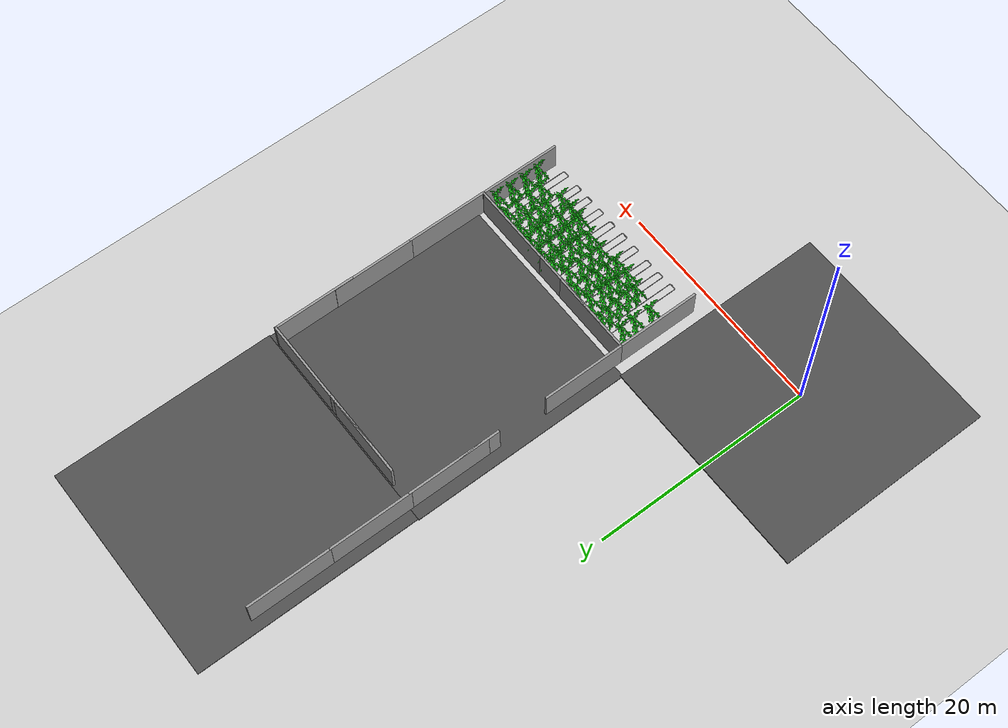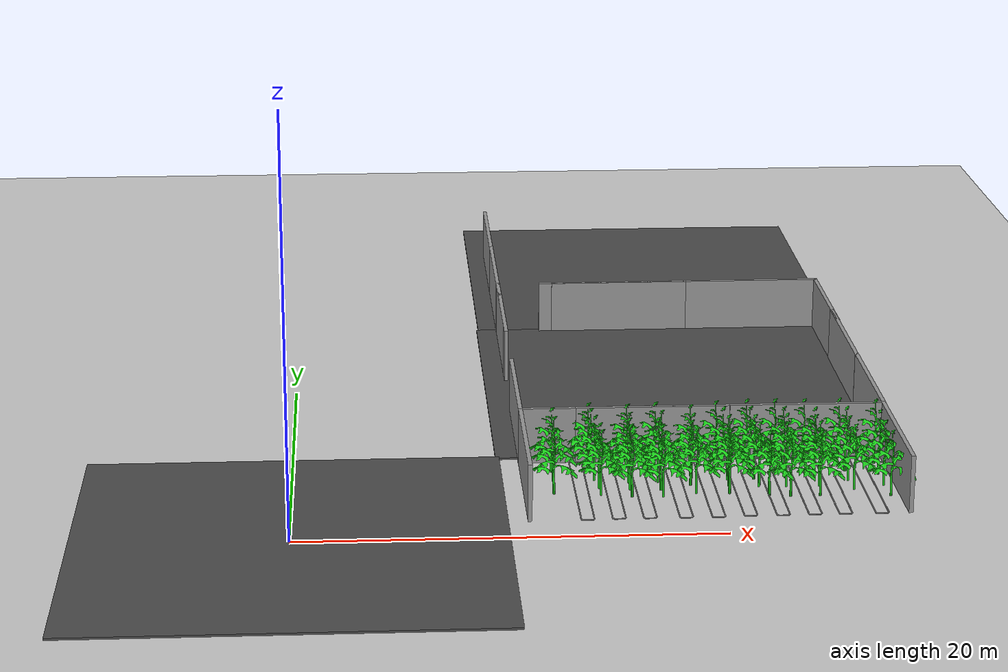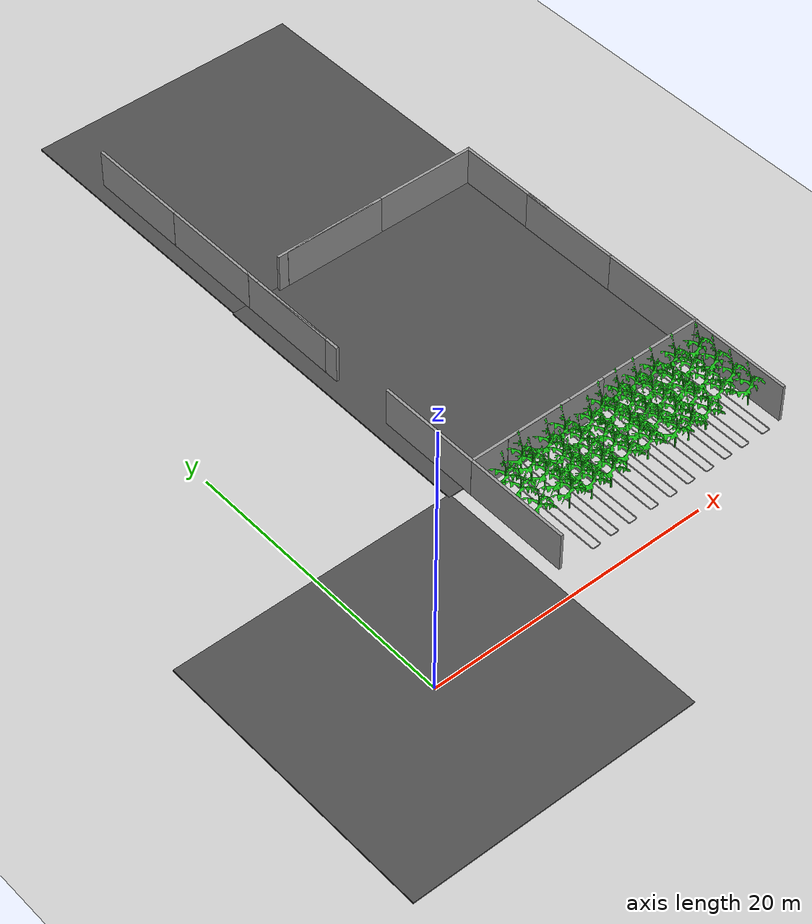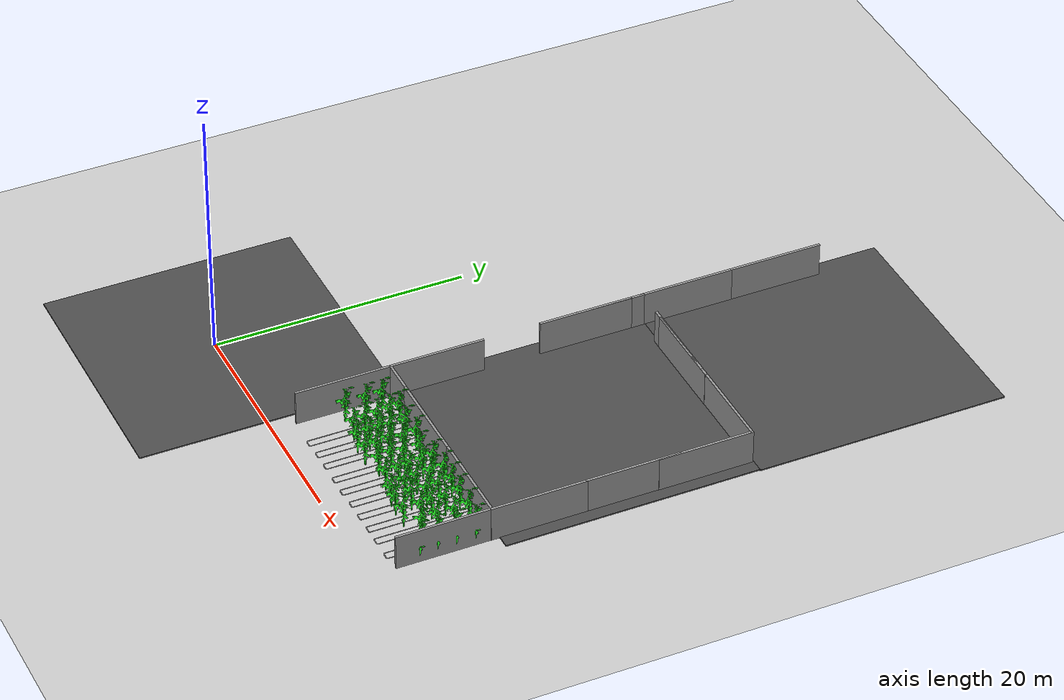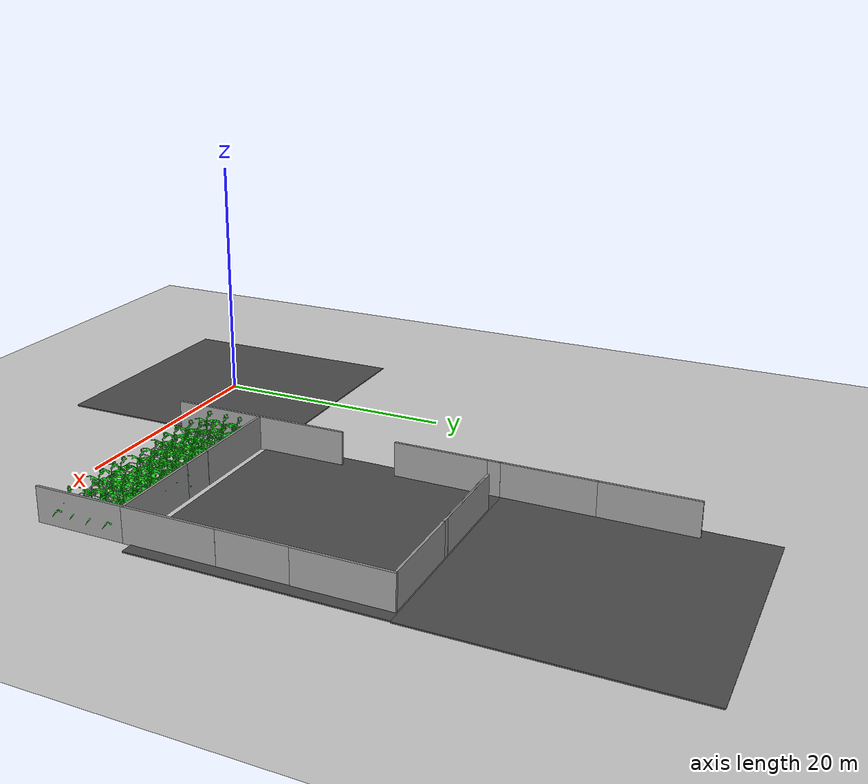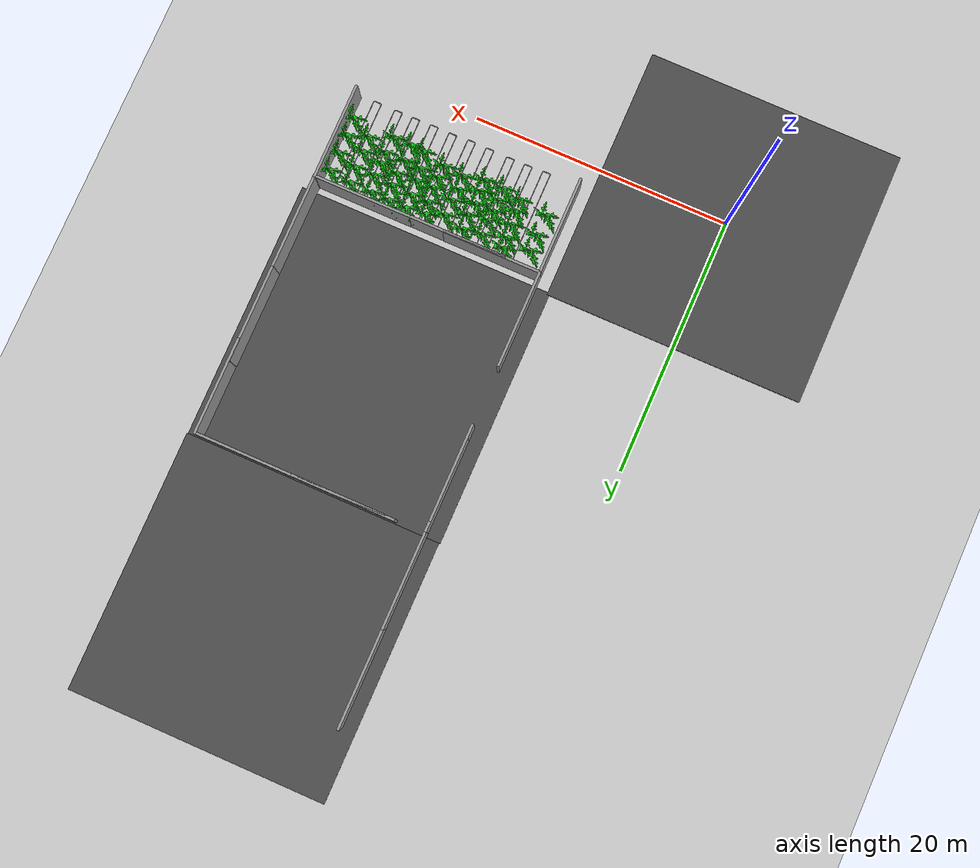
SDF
<sdf version="1.7">
 <world name="default">
  <model name="ground_plane">
   <static>1</static>
   <link name="link">
    <collision name="collision">
     <geometry><plane><normal>0 0 1</normal><size>100 100</size></plane></geometry>
     <surface><friction><ode><mu>100</mu><mu2>50</mu2></ode></friction></surface>
    </collision>
    <visual name="visual">
     <cast_shadows>0</cast_shadows>
     <geometry><plane><normal>0 0 1</normal><size>100 100</size></plane></geometry>
     <material>
      <script><uri>file://media/materials/scripts/gazebo.material</uri><name>Gazebo/Grey</name></script>
     </material>
    </visual>
   </link>
  </model>
  <model name="grey_wall_clone_clone">
   <static>1</static>
   <link name="link">
    <pose>0 0 1.4 0 -0 0</pose>
    <collision name="collision"><geometry><box><size>7.5 0.2 2.8</size></box></geometry></collision>
    <visual name="visual">
     <cast_shadows>0</cast_shadows>
     <geometry><box><size>7.5 0.2 2.8</size></box></geometry>
     <material>
      <script>
       <uri>model://grey_wall/materials/scripts</uri>
       <uri>model://grey_wall/materials/textures</uri>
       <name>vrc/grey_wall</name>
      </script>
     </material>
    </visual>
   </link>
   <pose>11 5.62968 0 0 -0 1.57</pose>
  </model>
  <model name="asphalt_plane">
   <static>1</static>
   <link name="link">
    <collision name="collision"><geometry><box><size>20 20 0.1</size></box></geometry></collision>
    <visual name="visual">
     <cast_shadows>0</cast_shadows>
     <geometry><box><size>20 20 0.1</size></box></geometry>
     <material>
      <script>
       <uri>model://asphalt_plane/materials/scripts</uri>
       <uri>model://asphalt_plane/materials/textures</uri>
       <name>vrc/asphalt</name>
      </script>
     </material>
    </visual>
   </link>
   <pose>0.007662 0.157905 0 0 -0 0</pose>
  </model>
  <model name="asphalt_plane_clone_clone_0">
   <static>1</static>
   <link name="link">
    <collision name="collision"><geometry><box><size>20 20 0.1</size></box></geometry></collision>
    <visual name="visual">
     <cast_shadows>0</cast_shadows>
     <geometry><box><size>20 20 0.1</size></box></geometry>
     <material>
      <script>
       <uri>model://asphalt_plane/materials/scripts</uri>
       <uri>model://asphalt_plane/materials/textures</uri>
       <name>vrc/asphalt</name>
      </script>
     </material>
    </visual>
   </link>
   <pose>19.8233 19.9822 0 0 -0 0</pose>
  </model>
  <model name="grey_wall_clone_0_clone_1">
   <static>1</static>
   <link name="link">
    <pose>0 0 1.4 0 -0 0</pose>
    <collision name="collision"><geometry><box><size>7.5 0.2 2.8</size></box></geometry></collision>
    <visual name="visual">
     <cast_shadows>0</cast_shadows>
     <geometry><box><size>7.5 0.2 2.8</size></box></geometry>
     <material>
      <script>
       <uri>model://grey_wall/materials/scripts</uri>
       <uri>model://grey_wall/materials/textures</uri>
       <name>vrc/grey_wall</name>
      </script>
     </material>
    </visual>
   </link>
   <pose>17.4307 9.39716 0 0 -0 0</pose>
  </model>
  <model name="grey_wall_clone_0_clone_2">
   <static>1</static>
   <link name="link">
    <pose>0 0 1.4 0 -0 0</pose>
    <collision name="collision"><geometry><box><size>7.5 0.2 2.8</size></box></geometry></collision>
    <visual name="visual">
     <cast_shadows>0</cast_shadows>
     <geometry><box><size>7.5 0.2 2.8</size></box></geometry>
     <material>
      <script>
       <uri>model://grey_wall/materials/scripts</uri>
       <uri>model://grey_wall/materials/textures</uri>
       <name>vrc/grey_wall</name>
      </script>
     </material>
    </visual>
   </link>
   <pose>24.9393 9.40639 0 0 -0 0</pose>
  </model>
  <model name="grey_wall_clone_clone_1_clone_2">
   <static>1</static>
   <link name="link">
    <pose>0 0 1.4 0 -0 0</pose>
    <collision name="collision"><geometry><box><size>7.5 0.2 2.8</size></box></geometry></collision>
    <visual name="visual">
     <cast_shadows>0</cast_shadows>
     <geometry><box><size>7.5 0.2 2.8</size></box></geometry>
     <material>
      <script>
       <uri>model://grey_wall/materials/scripts</uri>
       <uri>model://grey_wall/materials/textures</uri>
       <name>vrc/grey_wall</name>
      </script>
     </material>
    </visual>
   </link>
   <pose>28.7077 5.77425 0 0 -0 1.57</pose>
  </model>
  <model name="piperail_clone_7_clone_8">
   <static>1</static>
   <link name="link">
    <collision name="collision">
     <geometry>
      <mesh><scale>0.001 0.001 0.001</scale><uri>model://piperail/meshes/piperail.STL</uri></mesh>
     </geometry>
    </collision>
    <visual name="visual">
     <geometry>
      <mesh><scale>0.001 0.001 0.001</scale><uri>model://piperail/meshes/piperail.STL</uri></mesh>
     </geometry>
    </visual>
   </link>
   <pose>14.7814 9.25276 0.05 1.57 -0 0</pose>
  </model>
  <model name="piperail_clone_7_clone_clone_0">
   <static>1</static>
   <link name="link">
    <collision name="collision">
     <geometry>
      <mesh><scale>0.001 0.001 0.001</scale><uri>model://piperail/meshes/piperail.STL</uri></mesh>
     </geometry>
    </collision>
    <visual name="visual">
     <geometry>
      <mesh><scale>0.001 0.001 0.001</scale><uri>model://piperail/meshes/piperail.STL</uri></mesh>
     </geometry>
    </visual>
   </link>
   <pose>16.217 9.25654 0.050452 1.57 -0 0</pose>
  </model>
  <model name="piperail_clone_7_clone_clone_1">
   <static>1</static>
   <link name="link">
    <collision name="collision">
     <geometry>
      <mesh><scale>0.001 0.001 0.001</scale><uri>model://piperail/meshes/piperail.STL</uri></mesh>
     </geometry>
    </collision>
    <visual name="visual">
     <geometry>
      <mesh><scale>0.001 0.001 0.001</scale><uri>model://piperail/meshes/piperail.STL</uri></mesh>
     </geometry>
    </visual>
   </link>
   <pose>17.8892 9.23572 0.050452 1.57 -0 0</pose>
  </model>
  <model name="piperail_clone_7_clone_clone_2">
   <static>1</static>
   <link name="link">
    <collision name="collision">
     <geometry>
      <mesh><scale>0.001 0.001 0.001</scale><uri>model://piperail/meshes/piperail.STL</uri></mesh>
     </geometry>
    </collision>
    <visual name="visual">
     <geometry>
      <mesh><scale>0.001 0.001 0.001</scale><uri>model://piperail/meshes/piperail.STL</uri></mesh>
     </geometry>
    </visual>
   </link>
   <pose>19.3855 9.21694 0.050452 1.57 -0 0</pose>
  </model>
  <model name="piperail_clone_7_clone_clone_3">
   <static>1</static>
   <link name="link">
    <collision name="collision">
     <geometry>
      <mesh><scale>0.001 0.001 0.001</scale><uri>model://piperail/meshes/piperail.STL</uri></mesh>
     </geometry>
    </collision>
    <visual name="visual">
     <geometry>
      <mesh><scale>0.001 0.001 0.001</scale><uri>model://piperail/meshes/piperail.STL</uri></mesh>
     </geometry>
    </visual>
   </link>
   <pose>20.8829 9.28674 0.050452 1.57 -0 0</pose>
  </model>
  <model name="piperail_clone_7_clone_clone_4">
   <static>1</static>
   <link name="link">
    <collision name="collision">
     <geometry>
      <mesh><scale>0.001 0.001 0.001</scale><uri>model://piperail/meshes/piperail.STL</uri></mesh>
     </geometry>
    </collision>
    <visual name="visual">
     <geometry>
      <mesh><scale>0.001 0.001 0.001</scale><uri>model://piperail/meshes/piperail.STL</uri></mesh>
     </geometry>
    </visual>
   </link>
   <pose>22.3949 9.27044 0.050452 1.57 -0 0</pose>
  </model>
  <model name="piperail_clone_7_clone_clone_5">
   <static>1</static>
   <link name="link">
    <collision name="collision">
     <geometry>
      <mesh><scale>0.001 0.001 0.001</scale><uri>model://piperail/meshes/piperail.STL</uri></mesh>
     </geometry>
    </collision>
    <visual name="visual">
     <geometry>
      <mesh><scale>0.001 0.001 0.001</scale><uri>model://piperail/meshes/piperail.STL</uri></mesh>
     </geometry>
    </visual>
   </link>
   <pose>23.8884 9.29739 0.050452 1.57 -0 0</pose>
  </model>
  <model name="piperail_clone_7_clone_clone_6">
   <static>1</static>
   <link name="link">
    <collision name="collision">
     <geometry>
      <mesh><scale>0.001 0.001 0.001</scale><uri>model://piperail/meshes/piperail.STL</uri></mesh>
     </geometry>
    </collision>
    <visual name="visual">
     <geometry>
      <mesh><scale>0.001 0.001 0.001</scale><uri>model://piperail/meshes/piperail.STL</uri></mesh>
     </geometry>
    </visual>
   </link>
   <pose>25.3047 9.2994 0.050452 1.57 -0 0</pose>
  </model>
  <model name="piperail_clone_7_clone_clone_7">
   <static>1</static>
   <link name="link">
    <collision name="collision">
     <geometry>
      <mesh><scale>0.001 0.001 0.001</scale><uri>model://piperail/meshes/piperail.STL</uri></mesh>
     </geometry>
    </collision>
    <visual name="visual">
     <geometry>
      <mesh><scale>0.001 0.001 0.001</scale><uri>model://piperail/meshes/piperail.STL</uri></mesh>
     </geometry>
    </visual>
   </link>
   <pose>27.0084 9.2972 0.050452 1.57 -0 0</pose>
  </model>
  <model name="plant_clone_1_clone_23_clone_clone_11_clone">
   <static>1</static>
   <link name="link">
    <visual name="visual">
     <geometry><mesh><scale>0.01 0.01 0.01</scale><uri>model://plant/meshes/plant.STL</uri></mesh></geometry>
     <material>
      <ambient>0.1 0.8 0.1 1</ambient>
      <diffuse>0.1 0.8 0.1 1</diffuse>
      <specular>0.01 0.01 0.01 1</specular>
      <emissive>0 0 0 1</emissive>
     </material>
    </visual>
   </link>
   <pose>13.2025 9.54028 0.000845 1.57 -0 0</pose>
  </model>
  <model name="plant_clone_1_clone_23_clone_clone_11_clone_0">
   <static>1</static>
   <link name="link">
    <visual name="visual">
     <geometry><mesh><scale>0.01 0.01 0.01</scale><uri>model://plant/meshes/plant.STL</uri></mesh></geometry>
     <material>
      <ambient>0.1 0.8 0.1 1</ambient>
      <diffuse>0.1 0.8 0.1 1</diffuse>
      <specular>0.01 0.01 0.01 1</specular>
      <emissive>0 0 0 1</emissive>
     </material>
    </visual>
   </link>
   <pose>13.2678 8.71958 0.000845 1.57 -0 0</pose>
  </model>
  <model name="plant_clone_1_clone_23_clone_clone_11_clone_1">
   <static>1</static>
   <link name="link">
    <visual name="visual">
     <geometry><mesh><scale>0.01 0.01 0.01</scale><uri>model://plant/meshes/plant.STL</uri></mesh></geometry>
     <material>
      <ambient>0.1 0.8 0.1 1</ambient>
      <diffuse>0.1 0.8 0.1 1</diffuse>
      <specular>0.01 0.01 0.01 1</specular>
      <emissive>0 0 0 1</emissive>
     </material>
    </visual>
   </link>
   <pose>13.3688 7.7164 0.000845 1.57 -0 0</pose>
  </model>
  <model name="plant_clone_1_clone_23_clone_clone_11_clone_2">
   <static>1</static>
   <link name="link">
    <visual name="visual">
     <geometry><mesh><scale>0.01 0.01 0.01</scale><uri>model://plant/meshes/plant.STL</uri></mesh></geometry>
     <material>
      <ambient>0.1 0.8 0.1 1</ambient>
      <diffuse>0.1 0.8 0.1 1</diffuse>
      <specular>0.01 0.01 0.01 1</specular>
      <emissive>0 0 0 1</emissive>
     </material>
    </visual>
   </link>
   <pose>13.5115 6.68098 0.000845 1.57 -0 0</pose>
  </model>
  <model name="plant_clone_1_clone_23_clone_clone_11_clone_3">
   <static>1</static>
   <link name="link">
    <visual name="visual">
     <geometry><mesh><scale>0.01 0.01 0.01</scale><uri>model://plant/meshes/plant.STL</uri></mesh></geometry>
     <material>
      <ambient>0.1 0.8 0.1 1</ambient>
      <diffuse>0.1 0.8 0.1 1</diffuse>
      <specular>0.01 0.01 0.01 1</specular>
      <emissive>0 0 0 1</emissive>
     </material>
    </visual>
   </link>
   <pose>13.5343 5.79703 0.000845 1.57 -0 0</pose>
  </model>
  <model name="plant_clone_1_clone_23_clone_clone_11_clone_9">
   <static>1</static>
   <link name="link">
    <visual name="visual">
     <geometry><mesh><scale>0.01 0.01 0.01</scale><uri>model://plant/meshes/plant.STL</uri></mesh></geometry>
     <material>
      <ambient>0.1 0.8 0.1 1</ambient>
      <diffuse>0.1 0.8 0.1 1</diffuse>
      <specular>0.01 0.01 0.01 1</specular>
      <emissive>0 0 0 1</emissive>
     </material>
    </visual>
   </link>
   <pose>14.9746 5.48576 0.000845 1.57 -0 0</pose>
  </model>
  <model name="plant_clone_1_clone_23_clone_clone_11_clone_10">
   <static>1</static>
   <link name="link">
    <visual name="visual">
     <geometry><mesh><scale>0.01 0.01 0.01</scale><uri>model://plant/meshes/plant.STL</uri></mesh></geometry>
     <material>
      <ambient>0.1 0.8 0.1 1</ambient>
      <diffuse>0.1 0.8 0.1 1</diffuse>
      <specular>0.01 0.01 0.01 1</specular>
      <emissive>0 0 0 1</emissive>
     </material>
    </visual>
   </link>
   <pose>14.9647 6.43291 0.000845 1.57 -0 0</pose>
  </model>
  <model name="plant_clone_1_clone_23_clone_clone_11_clone_11">
   <static>1</static>
   <link name="link">
    <visual name="visual">
     <geometry><mesh><scale>0.01 0.01 0.01</scale><uri>model://plant/meshes/plant.STL</uri></mesh></geometry>
     <material>
      <ambient>0.1 0.8 0.1 1</ambient>
      <diffuse>0.1 0.8 0.1 1</diffuse>
      <specular>0.01 0.01 0.01 1</specular>
      <emissive>0 0 0 1</emissive>
     </material>
    </visual>
   </link>
   <pose>14.9738 7.32226 0.000845 1.57 -0 0</pose>
  </model>
  <model name="plant_clone_1_clone_23_clone_clone_11_clone_12">
   <static>1</static>
   <link name="link">
    <visual name="visual">
     <geometry><mesh><scale>0.01 0.01 0.01</scale><uri>model://plant/meshes/plant.STL</uri></mesh></geometry>
     <material>
      <ambient>0.1 0.8 0.1 1</ambient>
      <diffuse>0.1 0.8 0.1 1</diffuse>
      <specular>0.01 0.01 0.01 1</specular>
      <emissive>0 0 0 1</emissive>
     </material>
    </visual>
   </link>
   <pose>15.0596 8.07826 0.000845 1.57 -0 0</pose>
  </model>
  <model name="plant_clone_1_clone_23_clone_clone_11_clone_13">
   <static>1</static>
   <link name="link">
    <visual name="visual">
     <geometry><mesh><scale>0.01 0.01 0.01</scale><uri>model://plant/meshes/plant.STL</uri></mesh></geometry>
     <material>
      <ambient>0.1 0.8 0.1 1</ambient>
      <diffuse>0.1 0.8 0.1 1</diffuse>
      <specular>0.01 0.01 0.01 1</specular>
      <emissive>0 0 0 1</emissive>
     </material>
    </visual>
   </link>
   <pose>15.0472 9.22759 0.000845 1.57 -0 0</pose>
  </model>
  <model name="plant_clone_1_clone_23_clone_clone_11_clone_14">
   <static>1</static>
   <link name="link">
    <visual name="visual">
     <geometry><mesh><scale>0.01 0.01 0.01</scale><uri>model://plant/meshes/plant.STL</uri></mesh></geometry>
     <material>
      <ambient>0.1 0.8 0.1 1</ambient>
      <diffuse>0.1 0.8 0.1 1</diffuse>
      <specular>0.01 0.01 0.01 1</specular>
      <emissive>0 0 0 1</emissive>
     </material>
    </visual>
   </link>
   <pose>16.4409 9.43113 0.000845 1.57 -0 0</pose>
  </model>
  <model name="plant_clone_1_clone_23_clone_clone_11_clone_15">
   <static>1</static>
   <link name="link">
    <visual name="visual">
     <geometry><mesh><scale>0.01 0.01 0.01</scale><uri>model://plant/meshes/plant.STL</uri></mesh></geometry>
     <material>
      <ambient>0.1 0.8 0.1 1</ambient>
      <diffuse>0.1 0.8 0.1 1</diffuse>
      <specular>0.01 0.01 0.01 1</specular>
      <emissive>0 0 0 1</emissive>
     </material>
    </visual>
   </link>
   <pose>16.63 8.29243 0.000845 1.57 -0 0</pose>
  </model>
  <model name="plant_clone_1_clone_23_clone_clone_11_clone_16">
   <static>1</static>
   <link name="link">
    <visual name="visual">
     <geometry><mesh><scale>0.01 0.01 0.01</scale><uri>model://plant/meshes/plant.STL</uri></mesh></geometry>
     <material>
      <ambient>0.1 0.8 0.1 1</ambient>
      <diffuse>0.1 0.8 0.1 1</diffuse>
      <specular>0.01 0.01 0.01 1</specular>
      <emissive>0 0 0 1</emissive>
     </material>
    </visual>
   </link>
   <pose>16.3838 7.31293 0.000845 1.57 -0 0</pose>
  </model>
  <model name="plant_clone_1_clone_23_clone_clone_11_clone_17">
   <static>1</static>
   <link name="link">
    <visual name="visual">
     <geometry><mesh><scale>0.01 0.01 0.01</scale><uri>model://plant/meshes/plant.STL</uri></mesh></geometry>
     <material>
      <ambient>0.1 0.8 0.1 1</ambient>
      <diffuse>0.1 0.8 0.1 1</diffuse>
      <specular>0.01 0.01 0.01 1</specular>
      <emissive>0 0 0 1</emissive>
     </material>
    </visual>
   </link>
   <pose>16.4273 6.32392 0.000845 1.57 -0 0</pose>
  </model>
  <model name="plant_clone_1_clone_23_clone_clone_11_clone_18">
   <static>1</static>
   <link name="link">
    <visual name="visual">
     <geometry><mesh><scale>0.01 0.01 0.01</scale><uri>model://plant/meshes/plant.STL</uri></mesh></geometry>
     <material>
      <ambient>0.1 0.8 0.1 1</ambient>
      <diffuse>0.1 0.8 0.1 1</diffuse>
      <specular>0.01 0.01 0.01 1</specular>
      <emissive>0 0 0 1</emissive>
     </material>
    </visual>
   </link>
   <pose>16.4348 5.42892 0.000845 1.57 -0 0</pose>
  </model>
  <model name="plant_clone_1_clone_23_clone_clone_11_clone_24">
   <static>1</static>
   <link name="link">
    <visual name="visual">
     <geometry><mesh><scale>0.01 0.01 0.01</scale><uri>model://plant/meshes/plant.STL</uri></mesh></geometry>
     <material>
      <ambient>0.1 0.8 0.1 1</ambient>
      <diffuse>0.1 0.8 0.1 1</diffuse>
      <specular>0.01 0.01 0.01 1</specular>
      <emissive>0 0 0 1</emissive>
     </material>
    </visual>
   </link>
   <pose>18.0387 5.80454 0.000845 1.57 -0 0</pose>
  </model>
  <model name="plant_clone_1_clone_23_clone_clone_11_clone_25">
   <static>1</static>
   <link name="link">
    <visual name="visual">
     <geometry><mesh><scale>0.01 0.01 0.01</scale><uri>model://plant/meshes/plant.STL</uri></mesh></geometry>
     <material>
      <ambient>0.1 0.8 0.1 1</ambient>
      <diffuse>0.1 0.8 0.1 1</diffuse>
      <specular>0.01 0.01 0.01 1</specular>
      <emissive>0 0 0 1</emissive>
     </material>
    </visual>
   </link>
   <pose>17.8972 6.84032 0.000845 1.57 -0 0</pose>
  </model>
  <model name="plant_clone_1_clone_23_clone_clone_11_clone_26">
   <static>1</static>
   <link name="link">
    <visual name="visual">
     <geometry><mesh><scale>0.01 0.01 0.01</scale><uri>model://plant/meshes/plant.STL</uri></mesh></geometry>
     <material>
      <ambient>0.1 0.8 0.1 1</ambient>
      <diffuse>0.1 0.8 0.1 1</diffuse>
      <specular>0.01 0.01 0.01 1</specular>
      <emissive>0 0 0 1</emissive>
     </material>
    </visual>
   </link>
   <pose>18.0674 7.77653 0.000845 1.57 -0 0</pose>
  </model>
  <model name="plant_clone_1_clone_23_clone_clone_11_clone_27">
   <static>1</static>
   <link name="link">
    <visual name="visual">
     <geometry><mesh><scale>0.01 0.01 0.01</scale><uri>model://plant/meshes/plant.STL</uri></mesh></geometry>
     <material>
      <ambient>0.1 0.8 0.1 1</ambient>
      <diffuse>0.1 0.8 0.1 1</diffuse>
      <specular>0.01 0.01 0.01 1</specular>
      <emissive>0 0 0 1</emissive>
     </material>
    </visual>
   </link>
   <pose>18.1021 8.98771 0.000845 1.57 -0 0</pose>
  </model>
  <model name="plant_clone_1_clone_23_clone_clone_11_clone_28">
   <static>1</static>
   <link name="link">
    <visual name="visual">
     <geometry><mesh><scale>0.01 0.01 0.01</scale><uri>model://plant/meshes/plant.STL</uri></mesh></geometry>
     <material>
      <ambient>0.1 0.8 0.1 1</ambient>
      <diffuse>0.1 0.8 0.1 1</diffuse>
      <specular>0.01 0.01 0.01 1</specular>
      <emissive>0 0 0 1</emissive>
     </material>
    </visual>
   </link>
   <pose>19.3961 9.47278 0.000845 1.57 -0 0</pose>
  </model>
  <model name="plant_clone_1_clone_23_clone_clone_11_clone_29">
   <static>1</static>
   <link name="link">
    <visual name="visual">
     <geometry><mesh><scale>0.01 0.01 0.01</scale><uri>model://plant/meshes/plant.STL</uri></mesh></geometry>
     <material>
      <ambient>0.1 0.8 0.1 1</ambient>
      <diffuse>0.1 0.8 0.1 1</diffuse>
      <specular>0.01 0.01 0.01 1</specular>
      <emissive>0 0 0 1</emissive>
     </material>
    </visual>
   </link>
   <pose>19.627 8.57185 0.000845 1.57 -0 0</pose>
  </model>
  <model name="plant_clone_1_clone_23_clone_clone_11_clone_30">
   <static>1</static>
   <link name="link">
    <visual name="visual">
     <geometry><mesh><scale>0.01 0.01 0.01</scale><uri>model://plant/meshes/plant.STL</uri></mesh></geometry>
     <material>
      <ambient>0.1 0.8 0.1 1</ambient>
      <diffuse>0.1 0.8 0.1 1</diffuse>
      <specular>0.01 0.01 0.01 1</specular>
      <emissive>0 0 0 1</emissive>
     </material>
    </visual>
   </link>
   <pose>19.7503 7.47094 0.000845 1.57 -0 0</pose>
  </model>
  <model name="plant_clone_1_clone_23_clone_clone_11_clone_31">
   <static>1</static>
   <link name="link">
    <visual name="visual">
     <geometry><mesh><scale>0.01 0.01 0.01</scale><uri>model://plant/meshes/plant.STL</uri></mesh></geometry>
     <material>
      <ambient>0.1 0.8 0.1 1</ambient>
      <diffuse>0.1 0.8 0.1 1</diffuse>
      <specular>0.01 0.01 0.01 1</specular>
      <emissive>0 0 0 1</emissive>
     </material>
    </visual>
   </link>
   <pose>19.7028 6.61246 0.000845 1.57 -0 0</pose>
  </model>
  <model name="plant_clone_1_clone_23_clone_clone_11_clone_32">
   <static>1</static>
   <link name="link">
    <visual name="visual">
     <geometry><mesh><scale>0.01 0.01 0.01</scale><uri>model://plant/meshes/plant.STL</uri></mesh></geometry>
     <material>
      <ambient>0.1 0.8 0.1 1</ambient>
      <diffuse>0.1 0.8 0.1 1</diffuse>
      <specular>0.01 0.01 0.01 1</specular>
      <emissive>0 0 0 1</emissive>
     </material>
    </visual>
   </link>
   <pose>19.6072 5.66044 0.000845 1.57 -0 0</pose>
  </model>
  <model name="plant_clone_1_clone_23_clone_clone_11_clone_35">
   <static>1</static>
   <link name="link">
    <visual name="visual">
     <geometry><mesh><scale>0.01 0.01 0.01</scale><uri>model://plant/meshes/plant.STL</uri></mesh></geometry>
     <material>
      <ambient>0.1 0.8 0.1 1</ambient>
      <diffuse>0.1 0.8 0.1 1</diffuse>
      <specular>0.01 0.01 0.01 1</specular>
      <emissive>0 0 0 1</emissive>
     </material>
    </visual>
   </link>
   <pose>20.9063 9.63883 0.000845 1.57 -0 0</pose>
  </model>
  <model name="plant_clone_1_clone_23_clone_clone_11_clone_36">
   <static>1</static>
   <link name="link">
    <visual name="visual">
     <geometry><mesh><scale>0.01 0.01 0.01</scale><uri>model://plant/meshes/plant.STL</uri></mesh></geometry>
     <material>
      <ambient>0.1 0.8 0.1 1</ambient>
      <diffuse>0.1 0.8 0.1 1</diffuse>
      <specular>0.01 0.01 0.01 1</specular>
      <emissive>0 0 0 1</emissive>
     </material>
    </visual>
   </link>
   <pose>20.9421 8.57293 0.000845 1.57 -0 0</pose>
  </model>
  <model name="plant_clone_1_clone_23_clone_clone_11_clone_37">
   <static>1</static>
   <link name="link">
    <visual name="visual">
     <geometry><mesh><scale>0.01 0.01 0.01</scale><uri>model://plant/meshes/plant.STL</uri></mesh></geometry>
     <material>
      <ambient>0.1 0.8 0.1 1</ambient>
      <diffuse>0.1 0.8 0.1 1</diffuse>
      <specular>0.01 0.01 0.01 1</specular>
      <emissive>0 0 0 1</emissive>
     </material>
    </visual>
   </link>
   <pose>21.0122 7.46033 0.000845 1.57 -0 0</pose>
  </model>
  <model name="plant_clone_1_clone_23_clone_clone_11_clone_38">
   <static>1</static>
   <link name="link">
    <visual name="visual">
     <geometry><mesh><scale>0.01 0.01 0.01</scale><uri>model://plant/meshes/plant.STL</uri></mesh></geometry>
     <material>
      <ambient>0.1 0.8 0.1 1</ambient>
      <diffuse>0.1 0.8 0.1 1</diffuse>
      <specular>0.01 0.01 0.01 1</specular>
      <emissive>0 0 0 1</emissive>
     </material>
    </visual>
   </link>
   <pose>21.128 6.51024 0.000845 1.57 -0 0</pose>
  </model>
  <model name="plant_clone_1_clone_23_clone_clone_11_clone_39">
   <static>1</static>
   <link name="link">
    <visual name="visual">
     <geometry><mesh><scale>0.01 0.01 0.01</scale><uri>model://plant/meshes/plant.STL</uri></mesh></geometry>
     <material>
      <ambient>0.1 0.8 0.1 1</ambient>
      <diffuse>0.1 0.8 0.1 1</diffuse>
      <specular>0.01 0.01 0.01 1</specular>
      <emissive>0 0 0 1</emissive>
     </material>
    </visual>
   </link>
   <pose>21.4358 5.28423 0.000845 1.57 -0 0</pose>
  </model>
  <model name="plant_clone_1_clone_23_clone_clone_11_clone_43">
   <static>1</static>
   <link name="link">
    <visual name="visual">
     <geometry><mesh><scale>0.01 0.01 0.01</scale><uri>model://plant/meshes/plant.STL</uri></mesh></geometry>
     <material>
      <ambient>0.1 0.8 0.1 1</ambient>
      <diffuse>0.1 0.8 0.1 1</diffuse>
      <specular>0.01 0.01 0.01 1</specular>
      <emissive>0 0 0 1</emissive>
     </material>
    </visual>
   </link>
   <pose>22.2929 9.60661 0.000845 1.57 -0 0</pose>
  </model>
  <model name="plant_clone_1_clone_23_clone_clone_11_clone_44">
   <static>1</static>
   <link name="link">
    <visual name="visual">
     <geometry><mesh><scale>0.01 0.01 0.01</scale><uri>model://plant/meshes/plant.STL</uri></mesh></geometry>
     <material>
      <ambient>0.1 0.8 0.1 1</ambient>
      <diffuse>0.1 0.8 0.1 1</diffuse>
      <specular>0.01 0.01 0.01 1</specular>
      <emissive>0 0 0 1</emissive>
     </material>
    </visual>
   </link>
   <pose>22.5504 8.47204 0.000845 1.57 -0 0</pose>
  </model>
  <model name="plant_clone_1_clone_23_clone_clone_11_clone_45">
   <static>1</static>
   <link name="link">
    <visual name="visual">
     <geometry><mesh><scale>0.01 0.01 0.01</scale><uri>model://plant/meshes/plant.STL</uri></mesh></geometry>
     <material>
      <ambient>0.1 0.8 0.1 1</ambient>
      <diffuse>0.1 0.8 0.1 1</diffuse>
      <specular>0.01 0.01 0.01 1</specular>
      <emissive>0 0 0 1</emissive>
     </material>
    </visual>
   </link>
   <pose>22.5473 7.54515 0.000845 1.57 -0 0</pose>
  </model>
  <model name="plant_clone_1_clone_23_clone_clone_11_clone_46">
   <static>1</static>
   <link name="link">
    <visual name="visual">
     <geometry><mesh><scale>0.01 0.01 0.01</scale><uri>model://plant/meshes/plant.STL</uri></mesh></geometry>
     <material>
      <ambient>0.1 0.8 0.1 1</ambient>
      <diffuse>0.1 0.8 0.1 1</diffuse>
      <specular>0.01 0.01 0.01 1</specular>
      <emissive>0 0 0 1</emissive>
     </material>
    </visual>
   </link>
   <pose>22.4132 6.42647 0.000845 1.57 -0 0</pose>
  </model>
  <model name="plant_clone_1_clone_23_clone_clone_11_clone_47">
   <static>1</static>
   <link name="link">
    <visual name="visual">
     <geometry><mesh><scale>0.01 0.01 0.01</scale><uri>model://plant/meshes/plant.STL</uri></mesh></geometry>
     <material>
      <ambient>0.1 0.8 0.1 1</ambient>
      <diffuse>0.1 0.8 0.1 1</diffuse>
      <specular>0.01 0.01 0.01 1</specular>
      <emissive>0 0 0 1</emissive>
     </material>
    </visual>
   </link>
   <pose>22.4331 5.18642 0.000845 1.57 -0 0</pose>
  </model>
  <model name="plant_clone_1_clone_23_clone_clone_11_clone_50">
   <static>1</static>
   <link name="link">
    <visual name="visual">
     <geometry><mesh><scale>0.01 0.01 0.01</scale><uri>model://plant/meshes/plant.STL</uri></mesh></geometry>
     <material>
      <ambient>0.1 0.8 0.1 1</ambient>
      <diffuse>0.1 0.8 0.1 1</diffuse>
      <specular>0.01 0.01 0.01 1</specular>
      <emissive>0 0 0 1</emissive>
     </material>
    </visual>
   </link>
   <pose>23.7056 9.56883 0.000845 1.57 -0 0</pose>
  </model>
  <model name="plant_clone_1_clone_23_clone_clone_11_clone_51">
   <static>1</static>
   <link name="link">
    <visual name="visual">
     <geometry><mesh><scale>0.01 0.01 0.01</scale><uri>model://plant/meshes/plant.STL</uri></mesh></geometry>
     <material>
      <ambient>0.1 0.8 0.1 1</ambient>
      <diffuse>0.1 0.8 0.1 1</diffuse>
      <specular>0.01 0.01 0.01 1</specular>
      <emissive>0 0 0 1</emissive>
     </material>
    </visual>
   </link>
   <pose>24.0337 8.32997 0.000845 1.57 -0 0</pose>
  </model>
  <model name="plant_clone_1_clone_23_clone_clone_11_clone_52">
   <static>1</static>
   <link name="link">
    <visual name="visual">
     <geometry><mesh><scale>0.01 0.01 0.01</scale><uri>model://plant/meshes/plant.STL</uri></mesh></geometry>
     <material>
      <ambient>0.1 0.8 0.1 1</ambient>
      <diffuse>0.1 0.8 0.1 1</diffuse>
      <specular>0.01 0.01 0.01 1</specular>
      <emissive>0 0 0 1</emissive>
     </material>
    </visual>
   </link>
   <pose>23.9165 7.30709 0.000845 1.57 -0 0</pose>
  </model>
  <model name="plant_clone_1_clone_23_clone_clone_11_clone_53">
   <static>1</static>
   <link name="link">
    <visual name="visual">
     <geometry><mesh><scale>0.01 0.01 0.01</scale><uri>model://plant/meshes/plant.STL</uri></mesh></geometry>
     <material>
      <ambient>0.1 0.8 0.1 1</ambient>
      <diffuse>0.1 0.8 0.1 1</diffuse>
      <specular>0.01 0.01 0.01 1</specular>
      <emissive>0 0 0 1</emissive>
     </material>
    </visual>
   </link>
   <pose>23.995 6.44203 0.000845 1.57 -0 0</pose>
  </model>
  <model name="plant_clone_1_clone_23_clone_clone_11_clone_54">
   <static>1</static>
   <link name="link">
    <visual name="visual">
     <geometry><mesh><scale>0.01 0.01 0.01</scale><uri>model://plant/meshes/plant.STL</uri></mesh></geometry>
     <material>
      <ambient>0.1 0.8 0.1 1</ambient>
      <diffuse>0.1 0.8 0.1 1</diffuse>
      <specular>0.01 0.01 0.01 1</specular>
      <emissive>0 0 0 1</emissive>
     </material>
    </visual>
   </link>
   <pose>23.8345 5.17781 0.000845 1.57 -0 0</pose>
  </model>
  <model name="plant_clone_1_clone_23_clone_clone_11_clone_57">
   <static>1</static>
   <link name="link">
    <visual name="visual">
     <geometry><mesh><scale>0.01 0.01 0.01</scale><uri>model://plant/meshes/plant.STL</uri></mesh></geometry>
     <material>
      <ambient>0.1 0.8 0.1 1</ambient>
      <diffuse>0.1 0.8 0.1 1</diffuse>
      <specular>0.01 0.01 0.01 1</specular>
      <emissive>0 0 0 1</emissive>
     </material>
    </visual>
   </link>
   <pose>25.4046 9.5286 0.000845 1.57 -0 0</pose>
  </model>
  <model name="plant_clone_1_clone_23_clone_clone_11_clone_58">
   <static>1</static>
   <link name="link">
    <visual name="visual">
     <geometry><mesh><scale>0.01 0.01 0.01</scale><uri>model://plant/meshes/plant.STL</uri></mesh></geometry>
     <material>
      <ambient>0.1 0.8 0.1 1</ambient>
      <diffuse>0.1 0.8 0.1 1</diffuse>
      <specular>0.01 0.01 0.01 1</specular>
      <emissive>0 0 0 1</emissive>
     </material>
    </visual>
   </link>
   <pose>25.5645 8.32986 0.000845 1.57 -0 0</pose>
  </model>
  <model name="plant_clone_1_clone_23_clone_clone_11_clone_59">
   <static>1</static>
   <link name="link">
    <visual name="visual">
     <geometry><mesh><scale>0.01 0.01 0.01</scale><uri>model://plant/meshes/plant.STL</uri></mesh></geometry>
     <material>
      <ambient>0.1 0.8 0.1 1</ambient>
      <diffuse>0.1 0.8 0.1 1</diffuse>
      <specular>0.01 0.01 0.01 1</specular>
      <emissive>0 0 0 1</emissive>
     </material>
    </visual>
   </link>
   <pose>25.4823 7.05118 0.000845 1.57 -0 0</pose>
  </model>
  <model name="plant_clone_1_clone_23_clone_clone_11_clone_60">
   <static>1</static>
   <link name="link">
    <visual name="visual">
     <geometry><mesh><scale>0.01 0.01 0.01</scale><uri>model://plant/meshes/plant.STL</uri></mesh></geometry>
     <material>
      <ambient>0.1 0.8 0.1 1</ambient>
      <diffuse>0.1 0.8 0.1 1</diffuse>
      <specular>0.01 0.01 0.01 1</specular>
      <emissive>0 0 0 1</emissive>
     </material>
    </visual>
   </link>
   <pose>25.5707 5.88119 0.000845 1.57 -0 0</pose>
  </model>
  <model name="plant_clone_1_clone_23_clone_clone_11_clone_64">
   <static>1</static>
   <link name="link">
    <visual name="visual">
     <geometry><mesh><scale>0.01 0.01 0.01</scale><uri>model://plant/meshes/plant.STL</uri></mesh></geometry>
     <material>
      <ambient>0.1 0.8 0.1 1</ambient>
      <diffuse>0.1 0.8 0.1 1</diffuse>
      <specular>0.01 0.01 0.01 1</specular>
      <emissive>0 0 0 1</emissive>
     </material>
    </visual>
   </link>
   <pose>27.1505 9.27104 0.000845 1.57 -0 0</pose>
  </model>
  <model name="plant_clone_1_clone_23_clone_clone_11_clone_65">
   <static>1</static>
   <link name="link">
    <visual name="visual">
     <geometry><mesh><scale>0.01 0.01 0.01</scale><uri>model://plant/meshes/plant.STL</uri></mesh></geometry>
     <material>
      <ambient>0.1 0.8 0.1 1</ambient>
      <diffuse>0.1 0.8 0.1 1</diffuse>
      <specular>0.01 0.01 0.01 1</specular>
      <emissive>0 0 0 1</emissive>
     </material>
    </visual>
   </link>
   <pose>27.0907 7.82789 0.000845 1.57 -0 0</pose>
  </model>
  <model name="plant_clone_1_clone_23_clone_clone_11_clone_66">
   <static>1</static>
   <link name="link">
    <visual name="visual">
     <geometry><mesh><scale>0.01 0.01 0.01</scale><uri>model://plant/meshes/plant.STL</uri></mesh></geometry>
     <material>
      <ambient>0.1 0.8 0.1 1</ambient>
      <diffuse>0.1 0.8 0.1 1</diffuse>
      <specular>0.01 0.01 0.01 1</specular>
      <emissive>0 0 0 1</emissive>
     </material>
    </visual>
   </link>
   <pose>27.078 6.38849 0.000845 1.57 -0 0</pose>
  </model>
  <model name="plant_clone_1_clone_23_clone_clone_11_clone_67">
   <static>1</static>
   <link name="link">
    <visual name="visual">
     <geometry><mesh><scale>0.01 0.01 0.01</scale><uri>model://plant/meshes/plant.STL</uri></mesh></geometry>
     <material>
      <ambient>0.1 0.8 0.1 1</ambient>
      <diffuse>0.1 0.8 0.1 1</diffuse>
      <specular>0.01 0.01 0.01 1</specular>
      <emissive>0 0 0 1</emissive>
     </material>
    </visual>
   </link>
   <pose>27.1585 5.00088 0.000845 1.57 -0 0</pose>
  </model>
  <model name="grey_wall_clone_0_clone_1_clone">
   <static>1</static>
   <link name="link">
    <pose>0 0 1.4 0 -0 0</pose>
    <collision name="collision"><geometry><box><size>7.5 0.2 2.8</size></box></geometry></collision>
    <visual name="visual">
     <cast_shadows>0</cast_shadows>
     <geometry><box><size>7.5 0.2 2.8</size></box></geometry>
     <material>
      <script>
       <uri>model://grey_wall/materials/scripts</uri>
       <uri>model://grey_wall/materials/textures</uri>
       <name>vrc/grey_wall</name>
      </script>
     </material>
    </visual>
   </link>
   <pose>14.803 9.41433 0 0 -0 0</pose>
  </model>
  <model name="grey_wall_clone_clone_6">
   <static>1</static>
   <link name="link">
    <pose>0 0 1.4 0 -0 0</pose>
    <collision name="collision"><geometry><box><size>7.5 0.2 2.8</size></box></geometry></collision>
    <visual name="visual">
     <cast_shadows>0</cast_shadows>
     <geometry><box><size>7.5 0.2 2.8</size></box></geometry>
     <material>
      <script>
       <uri>model://grey_wall/materials/scripts</uri>
       <uri>model://grey_wall/materials/textures</uri>
       <name>vrc/grey_wall</name>
      </script>
     </material>
    </visual>
   </link>
   <pose>11 13.1179 0 0 -0 1.57</pose>
  </model>
  <model name="grey_wall_clone_clone_6_clone">
   <static>1</static>
   <link name="link">
    <pose>0 0 1.4 0 -0 0</pose>
    <collision name="collision"><geometry><box><size>7.5 0.2 2.8</size></box></geometry></collision>
    <visual name="visual">
     <cast_shadows>0</cast_shadows>
     <geometry><box><size>7.5 0.2 2.8</size></box></geometry>
     <material>
      <script>
       <uri>model://grey_wall/materials/scripts</uri>
       <uri>model://grey_wall/materials/textures</uri>
       <name>vrc/grey_wall</name>
      </script>
     </material>
    </visual>
   </link>
   <pose>11 25.1113 0 0 -0 1.57</pose>
  </model>
  <model name="grey_wall_clone_clone_1_clone_2_clone">
   <static>1</static>
   <link name="link">
    <pose>0 0 1.4 0 -0 0</pose>
    <collision name="collision"><geometry><box><size>7.5 0.2 2.8</size></box></geometry></collision>
    <visual name="visual">
     <cast_shadows>0</cast_shadows>
     <geometry><box><size>7.5 0.2 2.8</size></box></geometry>
     <material>
      <script>
       <uri>model://grey_wall/materials/scripts</uri>
       <uri>model://grey_wall/materials/textures</uri>
       <name>vrc/grey_wall</name>
      </script>
     </material>
    </visual>
   </link>
   <pose>28.732 13.0544 0 0 -0 1.57</pose>
  </model>
  <model name="grey_wall_clone_clone_1_clone_2_clone_0">
   <static>1</static>
   <link name="link">
    <pose>0 0 1.4 0 -0 0</pose>
    <collision name="collision"><geometry><box><size>7.5 0.2 2.8</size></box></geometry></collision>
    <visual name="visual">
     <cast_shadows>0</cast_shadows>
     <geometry><box><size>7.5 0.2 2.8</size></box></geometry>
     <material>
      <script>
       <uri>model://grey_wall/materials/scripts</uri>
       <uri>model://grey_wall/materials/textures</uri>
       <name>vrc/grey_wall</name>
      </script>
     </material>
    </visual>
   </link>
   <pose>28.7314 20.4164 0 0 -0 1.57</pose>
  </model>
  <model name="grey_wall_clone_clone_1_clone_2_clone_1">
   <static>1</static>
   <link name="link">
    <pose>0 0 1.4 0 -0 0</pose>
    <collision name="collision"><geometry><box><size>7.5 0.2 2.8</size></box></geometry></collision>
    <visual name="visual">
     <cast_shadows>0</cast_shadows>
     <geometry><box><size>7.5 0.2 2.8</size></box></geometry>
     <material>
      <script>
       <uri>model://grey_wall/materials/scripts</uri>
       <uri>model://grey_wall/materials/textures</uri>
       <name>vrc/grey_wall</name>
      </script>
     </material>
    </visual>
   </link>
   <pose>28.7639 26.1369 0 0 -0 1.57</pose>
  </model>
  <model name="grey_wall_clone_0_clone_1_clone_clone">
   <static>1</static>
   <link name="link">
    <pose>0 0 1.4 0 -0 0</pose>
    <collision name="collision"><geometry><box><size>7.5 0.2 2.8</size></box></geometry></collision>
    <visual name="visual">
     <cast_shadows>0</cast_shadows>
     <geometry><box><size>7.5 0.2 2.8</size></box></geometry>
     <material>
      <script>
       <uri>model://grey_wall/materials/scripts</uri>
       <uri>model://grey_wall/materials/textures</uri>
       <name>vrc/grey_wall</name>
      </script>
     </material>
    </visual>
   </link>
   <pose>25.0514 29.7838 0 0 -0 0</pose>
  </model>
  <model name="grey_wall_clone_0_clone_1_clone_clone_0">
   <static>1</static>
   <link name="link">
    <pose>0 0 1.4 0 -0 0</pose>
    <collision name="collision"><geometry><box><size>7.5 0.2 2.8</size></box></geometry></collision>
    <visual name="visual">
     <cast_shadows>0</cast_shadows>
     <geometry><box><size>7.5 0.2 2.8</size></box></geometry>
     <material>
      <script>
       <uri>model://grey_wall/materials/scripts</uri>
       <uri>model://grey_wall/materials/textures</uri>
       <name>vrc/grey_wall</name>
      </script>
     </material>
    </visual>
   </link>
   <pose>17.7469 29.7706 0 0 -0 0</pose>
  </model>
  <model name="grey_wall_clone_0_clone_1_clone_clone_1">
   <static>1</static>
   <link name="link">
    <pose>0 0 1.4 0 -0 0</pose>
    <collision name="collision"><geometry><box><size>7.5 0.2 2.8</size></box></geometry></collision>
    <visual name="visual">
     <cast_shadows>0</cast_shadows>
     <geometry><box><size>7.5 0.2 2.8</size></box></geometry>
     <material>
      <script>
       <uri>model://grey_wall/materials/scripts</uri>
       <uri>model://grey_wall/materials/textures</uri>
       <name>vrc/grey_wall</name>
      </script>
     </material>
    </visual>
   </link>
   <pose>17.0416 29.7791 0 0 -0 0</pose>
  </model>
  <model name="grey_wall_clone_clone_6_clone_clone">
   <static>1</static>
   <link name="link">
    <pose>0 0 1.4 0 -0 0</pose>
    <collision name="collision"><geometry><box><size>7.5 0.2 2.8</size></box></geometry></collision>
    <visual name="visual">
     <cast_shadows>0</cast_shadows>
     <geometry><box><size>7.5 0.2 2.8</size></box></geometry>
     <material>
      <script>
       <uri>model://grey_wall/materials/scripts</uri>
       <uri>model://grey_wall/materials/textures</uri>
       <name>vrc/grey_wall</name>
      </script>
     </material>
    </visual>
   </link>
   <pose>11 26.1405 0 0 -0 1.57</pose>
  </model>
  <model name="asphalt_plane_clone_clone_4">
   <static>1</static>
   <link name="link">
    <collision name="collision"><geometry><box><size>20 20 0.1</size></box></geometry></collision>
    <visual name="visual">
     <cast_shadows>0</cast_shadows>
     <geometry><box><size>20 20 0.1</size></box></geometry>
     <material>
      <script>
       <uri>model://asphalt_plane/materials/scripts</uri>
       <uri>model://asphalt_plane/materials/textures</uri>
       <name>vrc/asphalt</name>
      </script>
     </material>
    </visual>
   </link>
   <pose>19.9096 39.9799 0 0 -0 0</pose>
  </model>
  <model name="grey_wall_clone_clone_6_clone_clone_clone">
   <static>1</static>
   <link name="link">
    <pose>0 0 1.4 0 -0 0</pose>
    <collision name="collision"><geometry><box><size>7.5 0.2 2.8</size></box></geometry></collision>
    <visual name="visual">
     <cast_shadows>0</cast_shadows>
     <geometry><box><size>7.5 0.2 2.8</size></box></geometry>
     <material>
      <script>
       <uri>model://grey_wall/materials/scripts</uri>
       <uri>model://grey_wall/materials/textures</uri>
       <name>vrc/grey_wall</name>
      </script>
     </material>
    </visual>
   </link>
   <pose>11 33.4195 0 0 -0 1.57</pose>
  </model>
  <model name="grey_wall_clone_clone_6_clone_clone_clone_0">
   <static>1</static>
   <link name="link">
    <pose>0 0 1.4 0 -0 0</pose>
    <collision name="collision"><geometry><box><size>7.5 0.2 2.8</size></box></geometry></collision>
    <visual name="visual">
     <cast_shadows>0</cast_shadows>
     <geometry><box><size>7.5 0.2 2.8</size></box></geometry>
     <material>
      <script>
       <uri>model://grey_wall/materials/scripts</uri>
       <uri>model://grey_wall/materials/textures</uri>
       <name>vrc/grey_wall</name>
      </script>
     </material>
    </visual>
   </link>
   <pose>11 40.8275 0 0 -0 1.57</pose>
  </model>
  <model name="piperail_clone_7_clone_clone_9">
   <static>1</static>
   <link name="link">
    <collision name="collision">
     <geometry>
      <mesh><scale>0.001 0.001 0.001</scale><uri>model://piperail/meshes/piperail.STL</uri></mesh>
     </geometry>
    </collision>
    <visual name="visual">
     <geometry>
      <mesh><scale>0.001 0.001 0.001</scale><uri>model://piperail/meshes/piperail.STL</uri></mesh>
     </geometry>
    </visual>
   </link>
   <pose>13.3222 9.18842 0.050452 1.57 -0 0</pose>
  </model>
  <model name="plant_clone_1_clone_23_clone_clone_11_clone_5_clone">
   <static>1</static>
   <link name="link">
    <visual name="visual">
     <geometry><mesh><scale>0.01 0.01 0.01</scale><uri>model://plant/meshes/plant.STL</uri></mesh></geometry>
     <material>
      <ambient>0.1 0.8 0.1 1</ambient>
      <diffuse>0.1 0.8 0.1 1</diffuse>
      <specular>0.01 0.01 0.01 1</specular>
      <emissive>0 0 0 1</emissive>
     </material>
    </visual>
   </link>
   <pose>11.3992 8.94484 0.000845 1.57 -0 0</pose>
  </model>
  <model name="plant_clone_1_clone_23_clone_clone_11_clone_5_clone_0">
   <static>1</static>
   <link name="link">
    <visual name="visual">
     <geometry><mesh><scale>0.01 0.01 0.01</scale><uri>model://plant/meshes/plant.STL</uri></mesh></geometry>
     <material>
      <ambient>0.1 0.8 0.1 1</ambient>
      <diffuse>0.1 0.8 0.1 1</diffuse>
      <specular>0.01 0.01 0.01 1</specular>
      <emissive>0 0 0 1</emissive>
     </material>
    </visual>
   </link>
   <pose>11.4133 7.67591 0.000845 1.57 -0 0</pose>
  </model>
  <model name="plant_clone_1_clone_23_clone_clone_11_clone_5_clone_1">
   <static>1</static>
   <link name="link">
    <visual name="visual">
     <geometry><mesh><scale>0.01 0.01 0.01</scale><uri>model://plant/meshes/plant.STL</uri></mesh></geometry>
     <material>
      <ambient>0.1 0.8 0.1 1</ambient>
      <diffuse>0.1 0.8 0.1 1</diffuse>
      <specular>0.01 0.01 0.01 1</specular>
      <emissive>0 0 0 1</emissive>
     </material>
    </visual>
   </link>
   <pose>11.3293 6.06931 0.000845 1.57 -0 0</pose>
  </model>
 </world>
</sdf>
